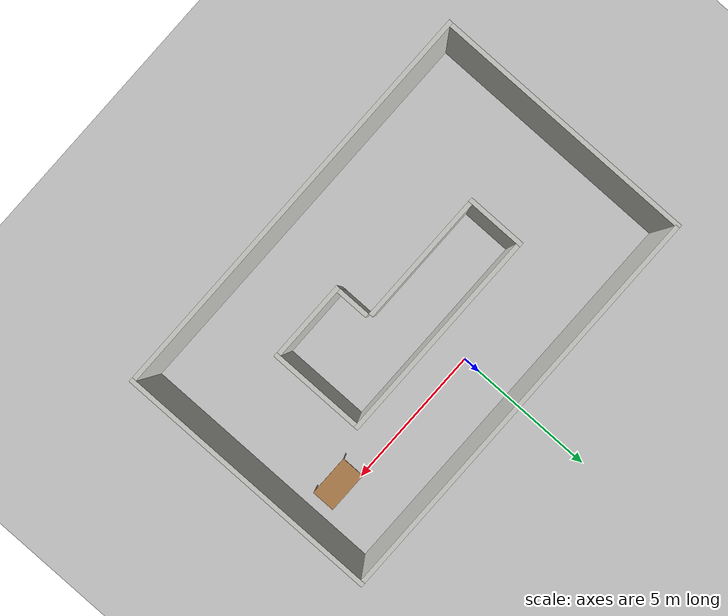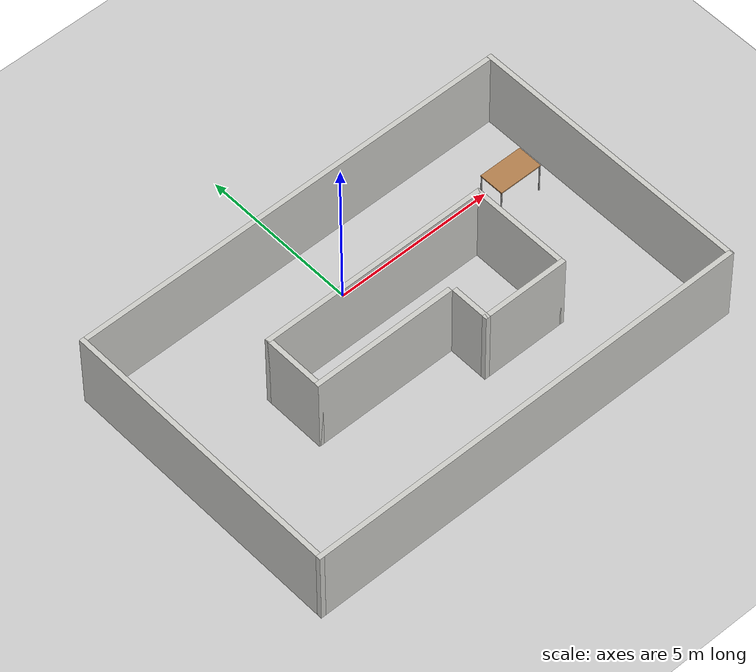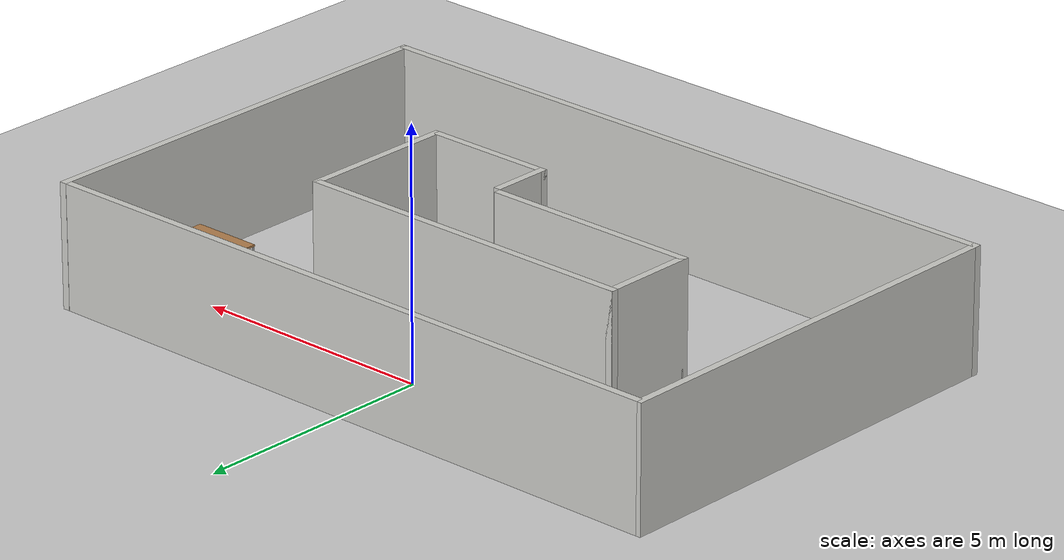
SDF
<sdf version="1.6">
 <world name="default">
  <light name="sun" type="directional">
   <pose>0 0 10 0 -0 0</pose>
   <diffuse>0.8 0.8 0.8 1</diffuse>
   <specular>0.2 0.2 0.2 1</specular>
   <attenuation>
    <range>1000</range>
    <constant>0.9</constant>
    <linear>0.01</linear>
    <quadratic>0.001</quadratic>
   </attenuation>
   <direction>-0.5 0.1 -0.9</direction>
  </light>
  <model name="ground_plane">
   <static>1</static>
   <link name="link">
    <collision name="collision">
     <geometry><plane><normal>0 0 1</normal><size>100 100</size></plane></geometry>
     <surface><friction><ode><mu>100</mu><mu2>50</mu2></ode></friction></surface>
    </collision>
    <visual name="visual">
     <cast_shadows>0</cast_shadows>
     <geometry><plane><normal>0 0 1</normal><size>100 100</size></plane></geometry>
     <material>
      <script><uri>file://media/materials/scripts/gazebo.material</uri><name>Gazebo/Grey</name></script>
     </material>
    </visual>
    <velocity_decay><linear>0</linear><angular>0</angular></velocity_decay>
   </link>
  </model>
  <physics name="default_physics" default="0" type="ode">
   <max_step_size>0.001</max_step_size>
   <real_time_factor>1</real_time_factor>
   <real_time_update_rate>1000</real_time_update_rate>
  </physics>
  <scene><ambient>0.4 0.4 0.4 1</ambient><background>0.7 0.7 0.7 1</background><shadows>1</shadows></scene>
  <spherical_coordinates>
   <surface_model>EARTH_WGS84</surface_model>
   <latitude_deg>0</latitude_deg>
   <longitude_deg>0</longitude_deg>
   <elevation>0</elevation>
   <heading_deg>0</heading_deg>
  </spherical_coordinates>
  <gravity>0 0 -9.8</gravity>
  <magnetic_field>6e-06 2.3e-05 -4.2e-05</magnetic_field>
  <atmosphere type="adiabatic"/>
  <model name="room_0">
   <pose>-0.064136 -2.60385 0 0 -0 0</pose>
   <link name="Wall_0">
    <collision name="Wall_0_Collision">
     <geometry><box><size>13.75 0.15 2.5</size></box></geometry>
     <pose>0 0 1.25 0 -0 0</pose>
    </collision>
    <visual name="Wall_0_Visual">
     <pose>0 0 1.25 0 -0 0</pose>
     <geometry><box><size>13.75 0.15 2.5</size></box></geometry>
     <material>
      <script><uri>file://media/materials/scripts/gazebo.material</uri><name>Gazebo/CeilingTiled</name></script>
      <ambient>1 1 1 1</ambient>
     </material>
    </visual>
    <pose>-0.027328 4.425 0 0 -0 0</pose>
   </link>
   <link name="Wall_12">
    <collision name="Wall_12_Collision">
     <geometry><box><size>2 0.15 2.5</size></box></geometry>
     <pose>0 0 1.25 0 -0 0</pose>
    </collision>
    <visual name="Wall_12_Visual">
     <pose>0 0 1.25 0 -0 0</pose>
     <geometry><box><size>2 0.15 2.5</size></box></geometry>
     <material>
      <script><uri>file://media/materials/scripts/gazebo.material</uri><name>Gazebo/CeilingTiled</name></script>
      <ambient>1 1 1 1</ambient>
     </material>
    </visual>
    <pose>-3.49908 0.404259 0 0 0 -1.5708</pose>
   </link>
   <link name="Wall_13">
    <collision name="Wall_13_Collision">
     <geometry><box><size>4.5 0.15 2.5</size></box></geometry>
     <pose>0 0 1.25 0 -0 0</pose>
    </collision>
    <visual name="Wall_13_Visual">
     <pose>0 0 1.25 0 -0 0</pose>
     <geometry><box><size>4.5 0.15 2.5</size></box></geometry>
     <material>
      <script><uri>file://media/materials/scripts/gazebo.material</uri><name>Gazebo/CeilingTiled</name></script>
      <ambient>1 1 1 1</ambient>
     </material>
    </visual>
    <pose>-1.32408 -0.520741 0 0 -0 0</pose>
   </link>
   <link name="Wall_2">
    <collision name="Wall_2_Collision">
     <geometry><box><size>9 0.15 2.5</size></box></geometry>
     <pose>0 0 1.25 0 -0 0</pose>
    </collision>
    <visual name="Wall_2_Visual">
     <pose>0 0 1.25 0 -0 0</pose>
     <geometry><box><size>9 0.15 2.5</size></box></geometry>
     <material>
      <script><uri>file://media/materials/scripts/gazebo.material</uri><name>Gazebo/CeilingTiled</name></script>
      <ambient>1 1 1 1</ambient>
     </material>
    </visual>
    <pose>6.925 0 0 0 0 -1.5708</pose>
   </link>
   <link name="Wall_3">
    <collision name="Wall_3_Collision">
     <geometry><box><size>14 0.15 2.5</size></box></geometry>
     <pose>0 0 1.25 0 -0 0</pose>
    </collision>
    <visual name="Wall_3_Visual">
     <pose>0 0 1.25 0 -0 0</pose>
     <geometry><box><size>14 0.15 2.5</size></box></geometry>
     <material>
      <script><uri>file://media/materials/scripts/gazebo.material</uri><name>Gazebo/CeilingTiled</name></script>
      <ambient>1 1 1 1</ambient>
     </material>
    </visual>
    <pose>0 -4.425 0 0 -0 3.14159</pose>
   </link>
   <link name="Wall_4">
    <collision name="Wall_4_Collision">
     <geometry><box><size>9 0.15 2.5</size></box></geometry>
     <pose>0 0 1.25 0 -0 0</pose>
    </collision>
    <visual name="Wall_4_Visual">
     <pose>0 0 1.25 0 -0 0</pose>
     <geometry><box><size>9 0.15 2.5</size></box></geometry>
     <material>
      <script><uri>file://media/materials/scripts/gazebo.material</uri><name>Gazebo/CeilingTiled</name></script>
      <ambient>1 1 1 1</ambient>
     </material>
    </visual>
    <pose>-6.925 0 0 0 -0 1.5708</pose>
   </link>
   <link name="Wall_6">
    <collision name="Wall_6_Collision">
     <geometry><box><size>7.25 0.15 2.5</size></box></geometry>
     <pose>0 0 1.25 0 -0 0</pose>
    </collision>
    <visual name="Wall_6_Visual">
     <pose>0 0 1.25 0 -0 0</pose>
     <geometry><box><size>7.25 0.15 2.5</size></box></geometry>
     <material>
      <script><uri>file://media/materials/scripts/gazebo.material</uri><name>Gazebo/CeilingTiled</name></script>
      <ambient>1 1 1 1</ambient>
     </material>
    </visual>
    <pose>0.050923 1.32926 0 0 -0 0</pose>
   </link>
   <link name="Wall_7">
    <collision name="Wall_7_Collision">
     <geometry><box><size>3.25 0.15 2.5</size></box></geometry>
     <pose>0 0 1.25 0 -0 0</pose>
    </collision>
    <visual name="Wall_7_Visual">
     <pose>0 0 1.25 0 -0 0</pose>
     <geometry><box><size>3.25 0.15 2.5</size></box></geometry>
     <material>
      <script><uri>file://media/materials/scripts/gazebo.material</uri><name>Gazebo/CeilingTiled</name></script>
      <ambient>1 1 1 1</ambient>
     </material>
    </visual>
    <pose>3.60092 -0.220741 0 0 0 -1.5708</pose>
   </link>
   <link name="Wall_8">
    <collision name="Wall_8_Collision">
     <geometry><box><size>2.75 0.15 2.5</size></box></geometry>
     <pose>0 0 1.25 0 -0 0</pose>
    </collision>
    <visual name="Wall_8_Visual">
     <pose>0 0 1.25 0 -0 0</pose>
     <geometry><box><size>2.75 0.15 2.5</size></box></geometry>
     <material>
      <script><uri>file://media/materials/scripts/gazebo.material</uri><name>Gazebo/CeilingTiled</name></script>
      <ambient>1 1 1 1</ambient>
     </material>
    </visual>
    <pose>2.30092 -1.77074 0 0 -0 3.14159</pose>
   </link>
   <link name="Wall_9">
    <collision name="Wall_9_Collision">
     <geometry><box><size>1.25 0.15 2.5</size></box></geometry>
     <pose>0 0 1.25 0 -0 0</pose>
    </collision>
    <visual name="Wall_9_Visual">
     <pose>0 0 1.25 0 -0 0</pose>
     <geometry><box><size>1.25 0.15 2.5</size></box></geometry>
     <material>
      <script><uri>file://media/materials/scripts/gazebo.material</uri><name>Gazebo/CeilingTiled</name></script>
      <ambient>1 1 1 1</ambient>
     </material>
    </visual>
    <pose>1.00092 -1.22074 0 0 -0 1.5708</pose>
   </link>
   <static>1</static>
  </model>
  <model name="table">
   <static>0</static>
   <link name="link">
    <collision name="surface">
     <pose>0 0 1 0 -0 0</pose>
     <geometry><box><size>1.5 0.8 0.03</size></box></geometry>
     <surface><friction><ode><mu>0.6</mu><mu2>0.6</mu2></ode></friction></surface>
    </collision>
    <visual name="visual1">
     <pose>0 0 1 0 -0 0</pose>
     <geometry><box><size>1.4 0.8 0.04</size></box></geometry>
     <material>
      <script><uri>file://media/materials/scripts/gazebo.material</uri><name>Gazebo/Wood</name></script>
     </material>
    </visual>
    <collision name="front_left_leg">
     <pose>0.68 0.38 0.5 0 -0 0</pose>
     <geometry><cylinder><radius>0.02</radius><length>1</length></cylinder></geometry>
    </collision>
    <visual name="front_left_leg">
     <pose>0.68 0.38 0.5 0 -0 0</pose>
     <geometry><cylinder><radius>0.02</radius><length>1</length></cylinder></geometry>
     <material>
      <script><uri>file://media/materials/scripts/gazebo.material</uri><name>Gazebo/Grey</name></script>
     </material>
    </visual>
    <collision name="front_right_leg">
     <pose>0.68 -0.38 0.5 0 -0 0</pose>
     <geometry><cylinder><radius>0.02</radius><length>1</length></cylinder></geometry>
    </collision>
    <visual name="front_right_leg">
     <pose>0.68 -0.38 0.5 0 -0 0</pose>
     <geometry><cylinder><radius>0.02</radius><length>1</length></cylinder></geometry>
     <material>
      <script><uri>file://media/materials/scripts/gazebo.material</uri><name>Gazebo/Grey</name></script>
     </material>
    </visual>
    <collision name="back_right_leg">
     <pose>-0.68 -0.38 0.5 0 -0 0</pose>
     <geometry><cylinder><radius>0.02</radius><length>1</length></cylinder></geometry>
    </collision>
    <visual name="back_right_leg">
     <pose>-0.68 -0.38 0.5 0 -0 0</pose>
     <geometry><cylinder><radius>0.02</radius><length>1</length></cylinder></geometry>
     <material>
      <script><uri>file://media/materials/scripts/gazebo.material</uri><name>Gazebo/Grey</name></script>
     </material>
    </visual>
    <collision name="back_left_leg">
     <pose>-0.68 0.38 0.5 0 -0 0</pose>
     <geometry><cylinder><radius>0.02</radius><length>1</length></cylinder></geometry>
    </collision>
    <visual name="back_left_leg">
     <pose>-0.68 0.38 0.5 0 -0 0</pose>
     <geometry><cylinder><radius>0.02</radius><length>1</length></cylinder></geometry>
     <material>
      <script><uri>file://media/materials/scripts/gazebo.material</uri><name>Gazebo/Grey</name></script>
     </material>
    </visual>
    <inertial>
     <inertia><ixx>1</ixx><ixy>0</ixy><ixz>0</ixz><iyy>1</iyy><iyz>0</iyz><izz>1</izz></inertia>
     <mass>1</mass>
    </inertial>
   </link>
   <pose>5.46896 -0.464525 -2e-06 0 -0 0</pose>
  </model>
 </world>
</sdf>
